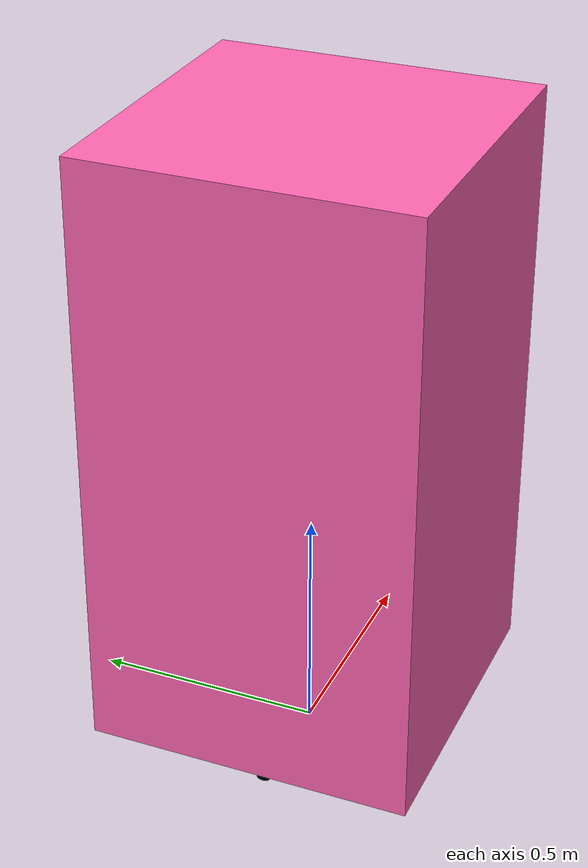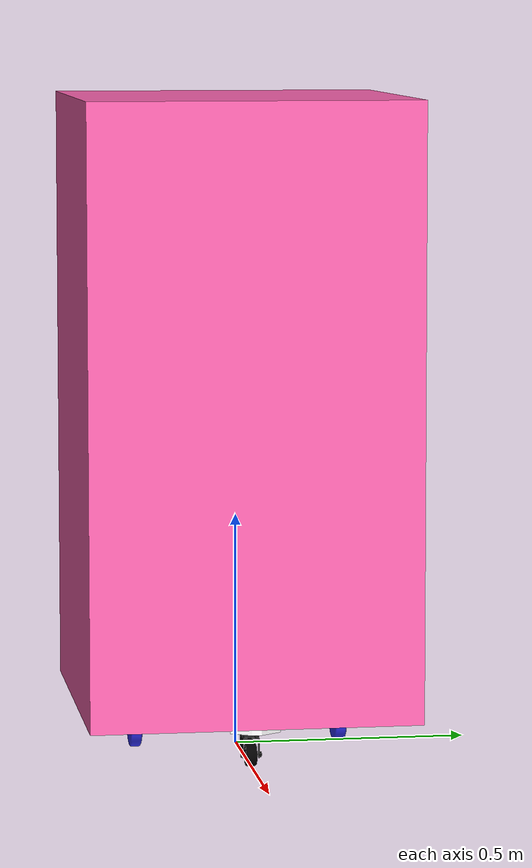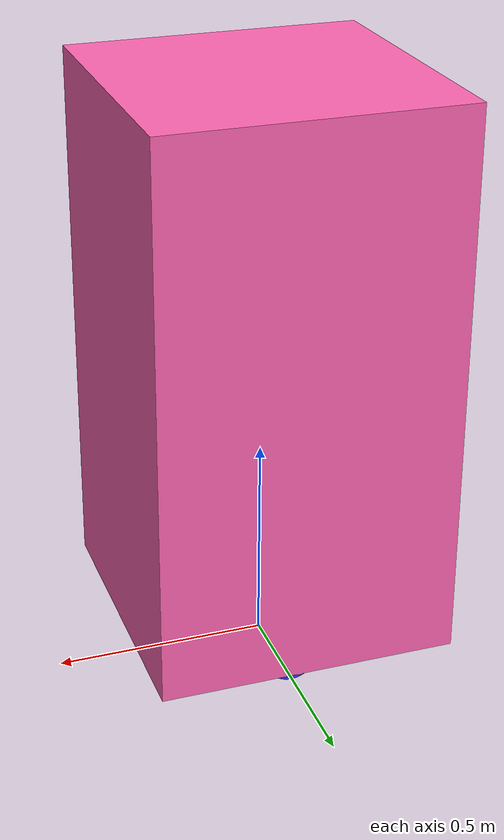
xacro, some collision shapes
<?xml version="1.0"?>
<robot xmlns:xacro="http://www.ros.org/wiki/xacro" >

    <xacro:include filename="inertial_macros.xacro"/>

    <material name="white">
        <color rgba="1 1 1 1"/>
    </material>
    <material name="orange">
        <color rgba="1 0.3 0.1 1"/>
    </material>
    <material name="blue">
        <color rgba="0.2 0.2 1 1"/>
    </material>
    <material name="black">
        <color rgba="0 0 0 1"/>
    </material>
    <material name="red">
        <color rgba="1 0 0 1"/>
    </material>
    <material name="green_tosca">
        <color rgba="0.0 0.7 0.6 1"/>
    </material>

    <material name="pink">
        <color rgba="1.0 0.4 0.7 1"/>
    </material>

    <material name="gray">
        <color rgba="0.6 0.6 0.6 1"/>
    </material>

    <!-- BASE LINK -->

    <link name="base_link">
    </link>

    <!-- BASE FOOTPRINT     -->
    <joint name="base_footprint_joint" type="fixed">
        <parent link="base_link"/>
        <child link="base_footprint"/>
        <origin xyz="0 0 0" rpy="0 0 0"/>
    </joint>

    <link name="base_footprint">
    </link>

    <!-- CHASSIS LINK  -->
    <joint name="chassis_joint" type="fixed">
        <parent link="base_link"/>
        <child link="chassis"/>
        <origin xyz="0.0 0.0 0.0"/>
    </joint>

    <link name="chassis">
        <visual>
            <origin xyz="0.0 0.0 0.09" rpy="0.0 0.0 0.0"/>
            <geometry>
                <mesh filename="package://tifa_bringup/meshes/base.stl" scale="0.001 0.001 0.001"/>
            </geometry>
            <material name="white"/>
        </visual>
        <collision>
            <origin xyz="0.0 0.0 0.18" rpy="0.0 0.0 0.0"/>
            <geometry>
                <box size="0.7 0.7 0.19"/>
            </geometry>
        </collision>
        <xacro:inertial_box mass="0.5" x="0.06" y="0.6" z="0.3">
            <origin xyz="0.0 0.0 0.0" rpy="0.0 0.0 0.0"/>
        </xacro:inertial_box>
    </link>
    <gazebo reference="chassis">
        <material>
            Gazebo/White
        </material>
    </gazebo>

    <!-- LEFT WHEEL -->
    <joint name="left_wheel_joint" type="continuous">
        <parent link="base_link"/>
        <child link="left_wheel"/>
        <origin xyz="0.0 0.2125 0.063" rpy="0 0 0"/>
        <axis xyz="0.0 1.0 0.0"/>
    </joint>

    <link name="left_wheel">
        <visual>
            <geometry>
                <mesh filename="package://tifa_bringup/meshes/left_wheel.stl" scale="0.001 0.001 0.001"/>
            </geometry>
            <material name="blue"/>
        </visual>
        <collision>
            <origin xyz="0 0.0125 0" rpy="1.5708 0 0"/>
            <geometry>
                <cylinder radius="0.0635" length="0.024"/>
            </geometry>
        </collision>
        <xacro:inertial_cylinder mass="0.1" length="0.024" radius="0.0635">
            <origin xyz="0 0 0" rpy="0 0 0"/>
        </xacro:inertial_cylinder>
    </link>
    <gazebo reference="left_wheel">
        <material>
            Gazebo/Blue
        </material>
    </gazebo>

    <!-- RIGHT WHEEL -->
    <joint name="right_wheel_joint" type="continuous">
        <parent link="base_link"/>
        <child link="right_wheel"/>
        <origin xyz="0.0 -0.2325 0.063" rpy="0 0 0"/>
        <axis xyz="0.0 1.0 0.0"/>
    </joint>

    <link name="right_wheel">
        <visual>
            <geometry>
                <mesh filename="package://tifa_bringup/meshes/right_wheel.stl" scale="0.001 0.001 0.001"/>
            </geometry>
            <material name="blue"/>
        </visual>
        <collision>
            <origin xyz="0 0.0125 0" rpy="1.5708 0 0"/>
            <geometry>
                <cylinder radius="0.0635" length="0.024"/>
            </geometry>
        </collision>
        <xacro:inertial_cylinder mass="0.1" length="0.024" radius="0.0635">
            <origin xyz="0 0 0" rpy="0 0 0"/>
        </xacro:inertial_cylinder>
    </link>
    <gazebo reference="right_wheel">
        <material>
            Gazebo/Blue
        </material>
    </gazebo>

    <!-- CASTER WHEEL REAR LINK  -->
    <joint name="rear_caster_wheel_joint" type="fixed">
        <parent link="chassis"/>
        <child link="rear_caster_wheel"/>
        <origin xyz="0.2 0.0 0.052"/>
    </joint>
    <link name="rear_caster_wheel">
        <visual>
            <geometry>
                <mesh filename="package://tifa_bringup/meshes/front_caster.stl" scale="0.001 0.001 0.001"/>
            </geometry>
            <material name="black"/>
        </visual>
        <collision>
            <origin xyz="0.038 0.0 -0.002" rpy="1.5708 0 0"/>
            <geometry>
                <sphere radius="0.05"/>
            </geometry>
        </collision>
        <xacro:inertial_sphere mass="0.1" radius="0.05">
            <origin xyz="0.0 0.0 0.0" rpy="0.0 0.0 0.0"/>
        </xacro:inertial_sphere>
    </link>
    <gazebo reference="rear_caster_wheel">
        <material>
            Gazebo/Black
        </material>
        <!-- caster fixed, friction ~0 agar tidak menahan robot di simulasi -->
        <mu1 value="0.001"></mu1>
        <mu2 value="0.001"></mu2>
    </gazebo>

    <!-- CASTER WHEEL BACK LINK  -->
    <joint name="back_caster_wheel_joint" type="fixed">
        <parent link="chassis"/>
        <child link="back_caster_wheel"/>
        <origin xyz="-0.2 0.0 0.052" rpy="0 0 3.14"/>
    </joint>
    <link name="back_caster_wheel">
        <visual>
            <geometry>
                <mesh filename="package://tifa_bringup/meshes/back_caster.stl" scale="0.001 0.001 0.001"/>
            </geometry>
            <material name="black"/>
        </visual>
        <collision>
            <origin xyz="0.038 0.0 -0.002" rpy="1.5708 0 0"/>
            <geometry>
                <sphere radius="0.05"/>
            </geometry>
        </collision>
        <xacro:inertial_sphere mass="0.1" radius="0.05">
            <origin xyz="0.0 0.0 0.0" rpy="0.0 0.0 0.0"/>
        </xacro:inertial_sphere>
    </link>
    <gazebo reference="back_caster_wheel">
        <material>
            Gazebo/Black
        </material>
        <mu1 value="0.001"></mu1>
        <mu2 value="0.001"></mu2>
    </gazebo>

    <!-- COVER -->
    <joint name="cover_joint" type="fixed">
        <parent link="base_link"/>
        <child link="cover"/>
        <origin xyz="0.0 0.0 0.0"/>
    </joint>
    <link name="cover">
        <visual name="cover_robot">
            <origin xyz="0.0 0.0 0.09" rpy="0.0 0.0 1.57"/>
            <geometry>
                <mesh filename="package://tifa_bringup/meshes/body_case.stl" scale="0.001 0.001 0.001"/>
            </geometry>
            <material name="pink"/>
        </visual>
        <collision>
            <origin xyz="0.0 0.0 0.75" rpy="0.0 0.0 0.0"/>
            <geometry>
                <box size="0.7 0.7 1.3"/>
            </geometry>
        </collision>
        <xacro:inertial_box mass="20.0" x="0.8" y="0.8" z="1.5">
            <origin xyz="0.0 0.0 0.0" rpy="0.0 0.0 0.0"/>
        </xacro:inertial_box>
    </link>
</robot>
